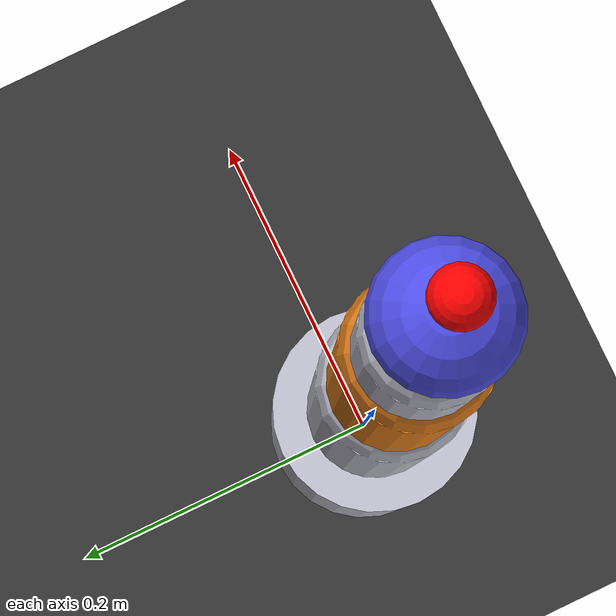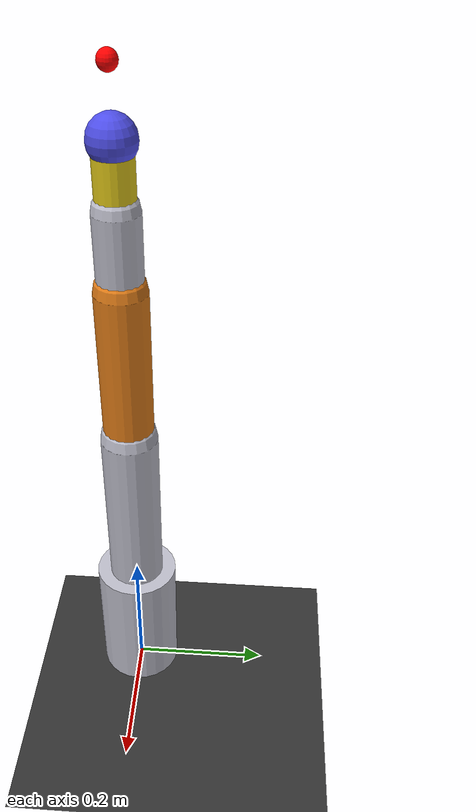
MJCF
<mujoco>
  <compiler angle="radian"/>

  <default>
    <joint damping="0.5"/>
    <geom rgba="0.75 0.75 0.8 1"/>
  </default>

  <worldbody>
    <light pos="0 -2 3" dir="0 0.5 -1"/>
    <geom type="plane" size="5 5 0.1" rgba="0.2 0.2 0.2 1"/>

    <!-- 六軸手臂：yaw-pitch-pitch-pitch-roll-twist -->
    <body name="link1" pos="0 0 0.1">
      <joint name="j1" type="hinge" axis="0 0 1"/>
      <geom type="cylinder" size="0.06 0.1"/>
      <body name="link2" pos="0 0 0.1">
        <joint name="j2" type="hinge" axis="0 1 0" range="-3.14 3.14"/>
        <geom type="capsule" fromto="0 0 0 0 0 0.25" size="0.04"/>
        <body name="link3" pos="0 0 0.25">
          <joint name="j3" type="hinge" axis="0 1 0" range="-3.14 3.14"/>
          <geom type="capsule" fromto="0 0 0 0 0 0.22" size="0.035" rgba="0.9 0.5 0.1 1"/>
          <body name="link4" pos="0 0 0.22">
            <joint name="j4" type="hinge" axis="0 1 0" range="-3.14 3.14"/>
            <geom type="capsule" fromto="0 0 0 0 0 0.1" size="0.03"/>
            <body name="link5" pos="0 0 0.1">
              <joint name="j5" type="hinge" axis="0 0 1" range="-3.14 3.14"/>
              <geom type="capsule" fromto="0 0 0 0 0 0.08" size="0.025" rgba="0.9 0.8 0.1 1"/>
              <body name="link6" pos="0 0 0.08">
                <joint name="j6" type="hinge" axis="0 1 0" range="-3.14 3.14"/>
                <geom type="sphere" size="0.03" rgba="0.3 0.3 0.9 1"/>
                <site name="ee" pos="0 0 0.08" size="0.012" rgba="1 0 0 1"/>
              </body>
            </body>
          </body>
        </body>
      </body>
    </body>
  </worldbody>

  <actuator>
    <position joint="j1" kp="200" ctrlrange="-3.14 3.14"/>
    <position joint="j2" kp="200" ctrlrange="-3.14 3.14"/>
    <position joint="j3" kp="200" ctrlrange="-3.14 3.14"/>
    <position joint="j4" kp="100" ctrlrange="-3.14 3.14"/>
    <position joint="j5" kp="100" ctrlrange="-3.14 3.14"/>
    <position joint="j6" kp="60"  ctrlrange="-3.14 3.14"/>
  </actuator>
</mujoco>
